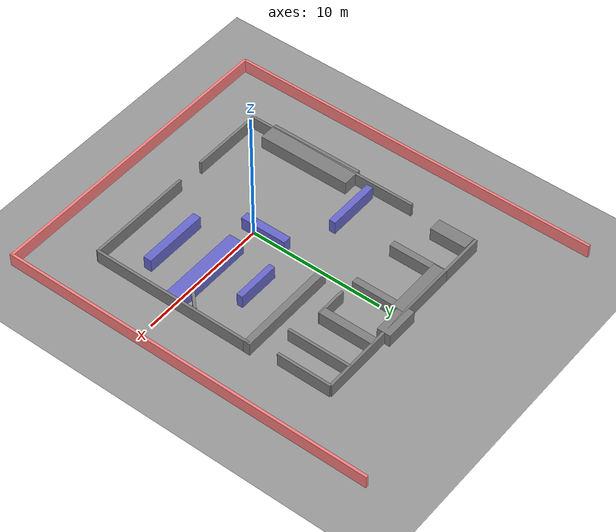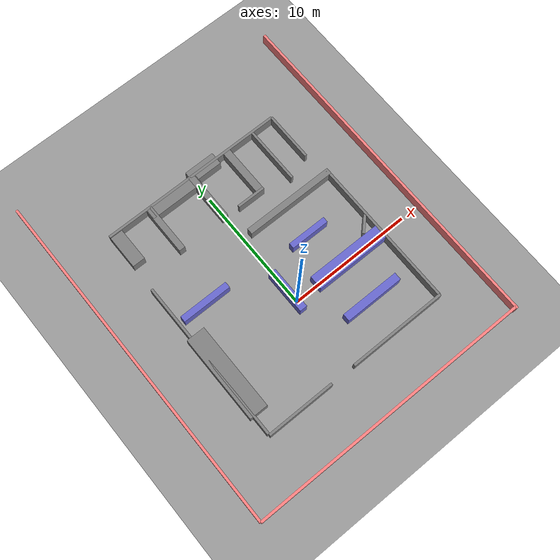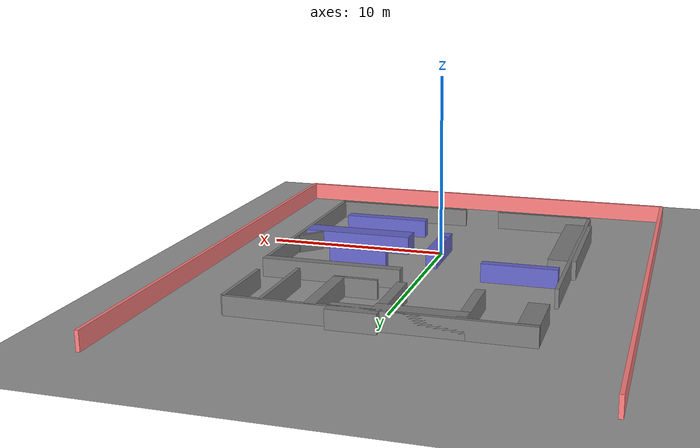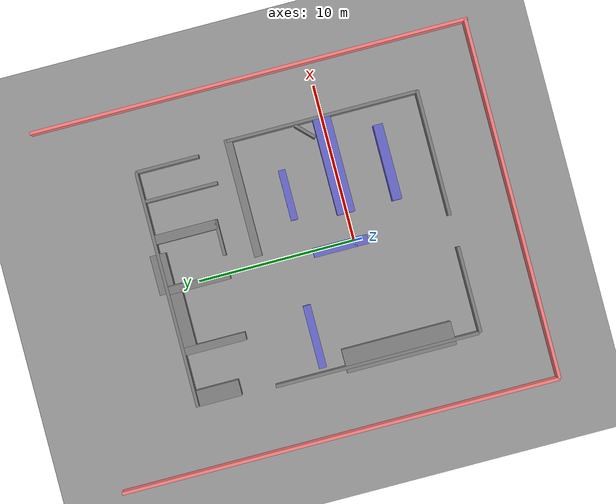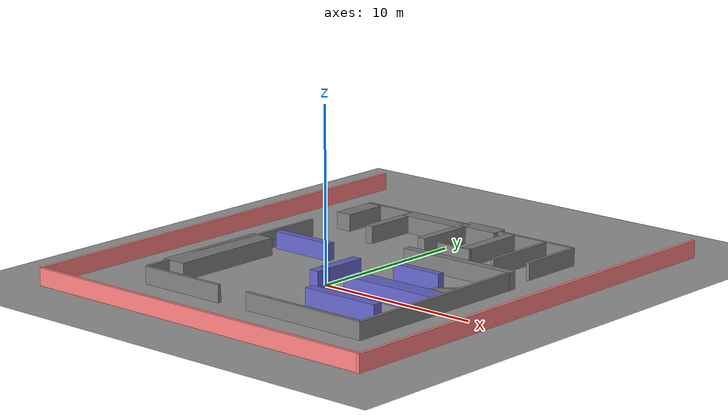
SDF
<?xml version="1.0" ?>
<sdf version="1.7">
  <world name="demo_room_world">

    <plugin filename="gz-sim-physics-system"
            name="gz::sim::systems::Physics"/>

    <plugin filename="gz-sim-user-commands-system"
            name="gz::sim::systems::UserCommands"/>

    <plugin filename="gz-sim-scene-broadcaster-system"
            name="gz::sim::systems::SceneBroadcaster"/>

    <plugin filename="gz-sim-sensors-system"
            name="gz::sim::systems::Sensors">
      <render_engine>ogre</render_engine>
    </plugin>

    <light type="directional" name="sun">
      <cast_shadows>true</cast_shadows>
      <pose>0 0 10 0 0 0</pose>
      <diffuse>0.8 0.8 0.8 1</diffuse>
      <specular>0.2 0.2 0.2 1</specular>
      <attenuation>
        <range>1000</range>
        <constant>0.9</constant>
        <linear>0.01</linear>
        <quadratic>0.001</quadratic>
      </attenuation>
      <direction>-0.5 0.1 -0.9</direction>
    </light>

    <model name="ground_plane">
      <static>true</static>
      <link name="link">
        <collision name="collision">
          <geometry>
            <plane>
              <normal>0 0 1</normal>
              <size>100 50</size>
            </plane>
          </geometry>
        </collision>
        <visual name="visual">
          <geometry>
            <plane>
              <normal>0 0 1</normal>
              <size>100 50</size>
            </plane>
          </geometry>
          <material>
            <ambient>0.6 0.6 0.6 1</ambient>
            <diffuse>0.6 0.6 0.6 1</diffuse>
          </material>
        </visual>
      </link>
    </model>

    <model name="outer_wall_north">
      <static>true</static>
      <pose>0 12.0 0.5 0 0 0</pose>
      <link name="link">
        <collision name="c"><geometry><box><size>15.0 0.2 1.0</size></box></geometry></collision>
        <visual name="v"><geometry><box><size>15.0 0.2 1.0</size></box></geometry><material><ambient>0.3 0.3 0.3 1</ambient><diffuse>0.5 0.5 0.5 1</diffuse></material></visual>
      </link>
    </model>

    <model name="outer_wall_south_left">
      <static>true</static>
      <pose>-4.75 -6.1 0.5 0 0 0</pose>
      <link name="link">
        <collision name="c"><geometry><box><size>5.5 0.2 1.0</size></box></geometry></collision>
        <visual name="v"><geometry><box><size>5.5 0.2 1.0</size></box></geometry><material><ambient>0.3 0.3 0.3 1</ambient><diffuse>0.5 0.5 0.5 1</diffuse></material></visual>
      </link>
    </model>

    <model name="outer_wall_south_right">
      <static>true</static>
      <pose>4.0 -6.1 0.5 0 0 0</pose>
      <link name="link">
        <collision name="c"><geometry><box><size>8.0 0.2 1.0</size></box></geometry></collision>
        <visual name="v"><geometry><box><size>8.0 0.2 1.0</size></box></geometry><material><ambient>0.3 0.3 0.3 1</ambient><diffuse>0.5 0.5 0.5 1</diffuse></material></visual>
      </link>
    </model>

    <model name="outer_wall_south_simulate_area">
      <static>true</static>
      <pose>0.0 -10.1 0.5 0 0 0</pose>
      <link name="link">
        <collision name="c"><geometry><box><size>23 0.2 1.0</size></box></geometry></collision>
        <visual name="v"><geometry><box><size>23 0.2 1.0</size></box></geometry><material><ambient>0.8 0.3 0.3 1</ambient><diffuse>1.0 0.5 0.5 1</diffuse></material></visual>
      </link>
    </model>

    <model name="outer_wall_west_top">
      <static>true</static>
      <pose>-7.0 10.5 0.5 0 0 0</pose>
      <link name="link">
        <collision name="c"><geometry><box><size>1.0 2.7 1.0</size></box></geometry></collision>
        <visual name="v"><geometry><box><size>1.0 2.7 1.0</size></box></geometry><material><ambient>0.3 0.3 0.3 1</ambient><diffuse>0.5 0.5 0.5 1</diffuse></material></visual>
      </link>
    </model>

    <model name="outer_wall_west_bottom">
      <static>true</static>
      <pose>-7.5 0.5 0.5 0 0 0</pose>
      <link name="link">
        <collision name="c"><geometry><box><size>0.2 13.0 1.0</size></box></geometry></collision>
        <visual name="v"><geometry><box><size>0.2 13.0 1.0</size></box></geometry><material><ambient>0.3 0.3 0.3 1</ambient><diffuse>0.5 0.5 0.5 1</diffuse></material></visual>
      </link>
    </model>

    <model name="outer_wall_west_simulate_area">
      <static>true</static>
      <pose>-11.5 3.90 0.5 0 0 0</pose>
      <link name="link">
        <collision name="c"><geometry><box><size>0.2 28 1.0</size></box></geometry></collision>
        <visual name="v"><geometry><box><size>0.2 28 1.0</size></box></geometry><material><ambient>0.8 0.3 0.3 1</ambient><diffuse>1.0 0.5 0.5 1</diffuse></material></visual>
      </link>
    </model>

    <model name="outer_wall_west_alcove">
      <static>true</static>
      <pose>-7.09 -0.98 0.5 0 0 0</pose>
      <link name="link">
        <collision name="c"><geometry><box><size>1.49 6.98 1.0</size></box></geometry></collision>
        <visual name="v"><geometry><box><size>1.49 6.98 1.0</size></box></geometry><material><ambient>0.3 0.3 0.3 1</ambient><diffuse>0.5 0.5 0.5 1</diffuse></material></visual>
      </link>
    </model>

    <model name="outer_wall_east_top">
      <static>true</static>
      <pose>7.5 10.0 0.5 0 0 0</pose>
      <link name="link">
        <collision name="c"><geometry><box><size>0.2 4.0 1.0</size></box></geometry></collision>
        <visual name="v"><geometry><box><size>0.2 4.0 1.0</size></box></geometry><material><ambient>0.3 0.3 0.3 1</ambient><diffuse>0.5 0.5 0.5 1</diffuse></material></visual>
      </link>
    </model>

    <model name="outer_wall_east_bottom">
      <static>true</static>
      <pose>7.94 0 0.5 0 0 0</pose>
      <link name="link">
        <collision name="c"><geometry><box><size>0.2 12.2 1.0</size></box></geometry></collision>
        <visual name="v"><geometry><box><size>0.2 12.2 1.0</size></box></geometry><material><ambient>0.3 0.3 0.3 1</ambient><diffuse>0.5 0.5 0.5 1</diffuse></material></visual>
      </link>
    </model>

    <model name="outer_wall_east_simulate_area">
      <static>true</static>
      <pose>11.5 3.75 0.5 0 0 0</pose>
      <link name="link">
        <collision name="c"><geometry><box><size>0.2 28 1.0</size></box></geometry></collision>
        <visual name="v"><geometry><box><size>0.2 28 1.0</size></box></geometry><material><ambient>0.8 0.3 0.3 1</ambient><diffuse>1.0 0.5 0.5 1</diffuse></material></visual>
      </link>
    </model>

    <model name="outer_wall_east_chamfer">
      <static>true</static>
      <pose>7.32 1.24 0.5 0 0 0.7854</pose>
      <link name="link">
        <collision name="c"><geometry><box><size>1.47 0.2 1.0</size></box></geometry></collision>
        <visual name="v"><geometry><box><size>1.47 0.2 1.0</size></box></geometry><material><ambient>0.3 0.3 0.3 1</ambient><diffuse>0.5 0.5 0.5 1</diffuse></material></visual>
      </link>
    </model>

    <model name="inner_wall_n_1_e">
      <static>true</static>
      <pose>-4.0 10.0 0.5 0 0 0</pose>
      <link name="link">
        <collision name="c"><geometry><box><size>0.5 4.0 1.0</size></box></geometry></collision>
        <visual name="v"><geometry><box><size>0.5 4.0 1.0</size></box></geometry><material><ambient>0.3 0.3 0.3 1</ambient><diffuse>0.5 0.5 0.5 1</diffuse></material></visual>
      </link>
    </model>

    <model name="inner_wall_n_2_e">
      <static>true</static>
      <pose>-0.1 10.0 0.5 0 0 0</pose>
      <link name="link">
        <collision name="c"><geometry><box><size>0.5 4.0 1.0</size></box></geometry></collision>
        <visual name="v"><geometry><box><size>0.5 4.0 1.0</size></box></geometry><material><ambient>0.3 0.3 0.3 1</ambient><diffuse>0.5 0.5 0.5 1</diffuse></material></visual>
      </link>
    </model>

    <model name="inner_wall_n_2_n">
      <static>true</static>
      <pose>-2.0 11.60 0.5 0 0 0</pose>
      <link name="link">
        <collision name="c"><geometry><box><size>4.4 1.0 1.0</size></box></geometry></collision>
        <visual name="v"><geometry><box><size>4.4 1.0 1.0</size></box></geometry><material><ambient>0.3 0.3 0.3 1</ambient><diffuse>0.5 0.5 0.5 1</diffuse></material></visual>
      </link>
    </model>

    <model name="inner_wall_n_3_n">
      <static>true</static>
      <pose>1.0 12.0 0.5 0 0 0</pose>
      <link name="link">
        <collision name="c"><geometry><box><size>2.5 1.0 1.0</size></box></geometry></collision>
        <visual name="v"><geometry><box><size>2.5 1.0 1.0</size></box></geometry><material><ambient>0.3 0.3 0.3 1</ambient><diffuse>0.5 0.5 0.5 1</diffuse></material></visual>
      </link>
    </model>

    <model name="inner_wall_n_3_e">
      <static>true</static>
      <pose>3.15 10.0 0.5 0 0 0</pose>
      <link name="link">
        <collision name="c"><geometry><box><size>0.6 4.0 1.0</size></box></geometry></collision>
        <visual name="v"><geometry><box><size>0.6 4.0 1.0</size></box></geometry><material><ambient>0.3 0.3 0.3 1</ambient><diffuse>0.5 0.5 0.5 1</diffuse></material></visual>
      </link>
    </model>

    <model name="inner_wall_n_3_s">
      <static>true</static>
      <pose>2.3 8.0 0.5 0 0 0</pose>
      <link name="link">
        <collision name="c"><geometry><box><size>2.3 0.2 1.0</size></box></geometry></collision>
        <visual name="v"><geometry><box><size>2.3 0.2 1.0</size></box></geometry><material><ambient>0.3 0.3 0.3 1</ambient><diffuse>0.5 0.5 0.5 1</diffuse></material></visual>
      </link>
    </model>

    <model name="inner_wall_n_4_e">
      <static>true</static>
      <pose>5.6 9.65 0.5 0 0 0</pose>
      <link name="link">
        <collision name="c"><geometry><box><size>0.2 4.7 1.0</size></box></geometry></collision>
        <visual name="v"><geometry><box><size>0.2 4.7 1.0</size></box></geometry><material><ambient>0.3 0.3 0.3 1</ambient><diffuse>0.5 0.5 0.5 1</diffuse></material></visual>
      </link>
    </model>

    <model name="inner_wall_e_1_n">
      <static>true</static>
      <pose>4.3 6.0 0.5 0 0 0</pose>
      <link name="link">
        <collision name="c"><geometry><box><size>7.5 0.5 1.0</size></box></geometry></collision>
        <visual name="v"><geometry><box><size>7.5 0.5 1.0</size></box></geometry><material><ambient>0.3 0.3 0.3 1</ambient><diffuse>0.5 0.5 0.5 1</diffuse></material></visual>
      </link>
    </model>

    <model name="inner_top_left_horizontal">
      <static>true</static>
      <pose>-5.14 3.89 0.5 0 0 0</pose>
      <link name="link">
        <collision name="c"><geometry><box><size>4.00 0.49 1.0</size></box></geometry></collision>
        <visual name="v"><geometry><box><size>4.00 0.49 1.0</size></box></geometry><material><ambient>0.2 0.2 0.5 1</ambient><diffuse>0.4 0.4 0.8 1</diffuse></material></visual>
      </link>
    </model>

    <model name="inner_upper_right_horizontal">
      <static>true</static>
      <pose>3.77 3.26 0.5 0 0 0</pose>
      <link name="link">
        <collision name="c"><geometry><box><size>3.19 0.45 1.0</size></box></geometry></collision>
        <visual name="v"><geometry><box><size>3.19 0.45 1.0</size></box></geometry><material><ambient>0.2 0.2 0.5 1</ambient><diffuse>0.4 0.4 0.8 1</diffuse></material></visual>
      </link>
    </model>

    <model name="inner_middle_vertical_top">
      <static>true</static>
      <pose>-0.11 0.91 0.5 0 0 0</pose>
      <link name="link">
        <collision name="c"><geometry><box><size>0.6 3.5 1.0</size></box></geometry></collision>
        <visual name="v"><geometry><box><size>0.6 3.5 1.0</size></box></geometry><material><ambient>0.2 0.2 0.5 1</ambient><diffuse>0.4 0.4 0.8 1</diffuse></material></visual>
      </link>
    </model>

    <model name="inner_middle_vertical_bottom">
      <static>true</static>
      <pose>-0.10 -0.0 0.5 0 0 0</pose>
      <link name="link">
        <collision name="c"><geometry><box><size>0.6 0.2 1.0</size></box></geometry></collision>
        <visual name="v"><geometry><box><size>0.6 0.2 1.0</size></box></geometry><material><ambient>0.2 0.2 0.5 1</ambient><diffuse>0.4 0.4 0.8 1</diffuse></material></visual>
      </link>
    </model>

    <model name="inner_middle_right_horizontal">
      <static>true</static>
      <pose>4.80 0.06 0.5 0 0 0</pose>
      <link name="link">
        <collision name="c"><geometry><box><size>6.08 1.13 1.0</size></box></geometry></collision>
        <visual name="v"><geometry><box><size>6.08 1.13 1.0</size></box></geometry><material><ambient>0.2 0.2 0.5 1</ambient><diffuse>0.4 0.4 0.8 1</diffuse></material></visual>
      </link>
    </model>

    <model name="inner_lower_right_horizontal">
      <static>true</static>
      <pose>4.17 -3.21 0.5 0 0 0</pose>
      <link name="link">
        <collision name="c"><geometry><box><size>4.81 0.60 1.0</size></box></geometry></collision>
        <visual name="v"><geometry><box><size>4.81 0.60 1.0</size></box></geometry><material><ambient>0.2 0.2 0.5 1</ambient><diffuse>0.4 0.4 0.8 1</diffuse></material></visual>
      </link>
    </model>

  </world>
</sdf>
